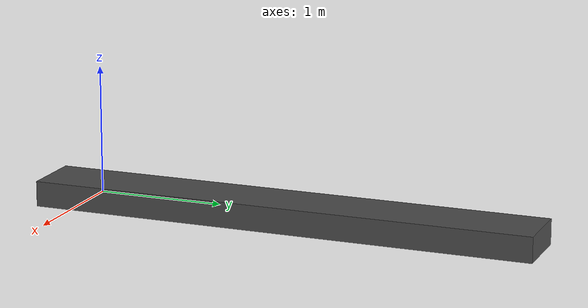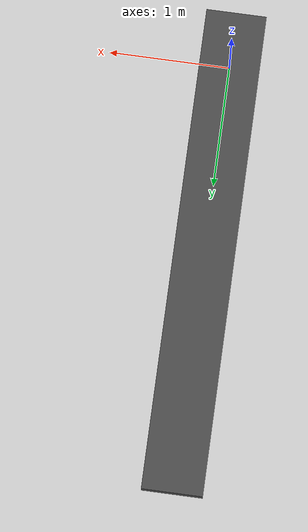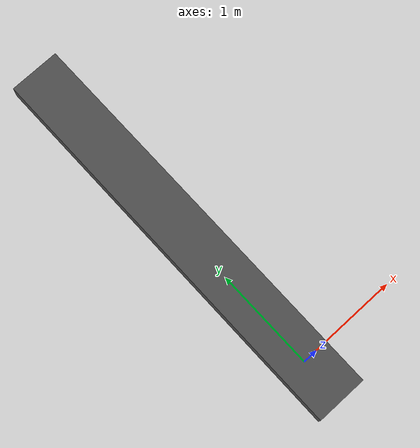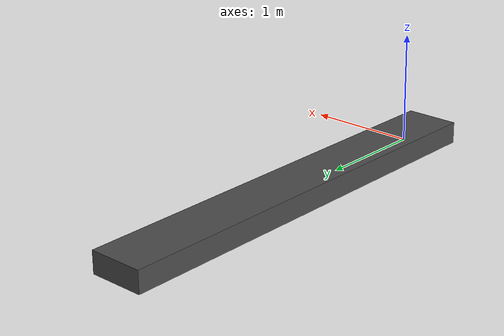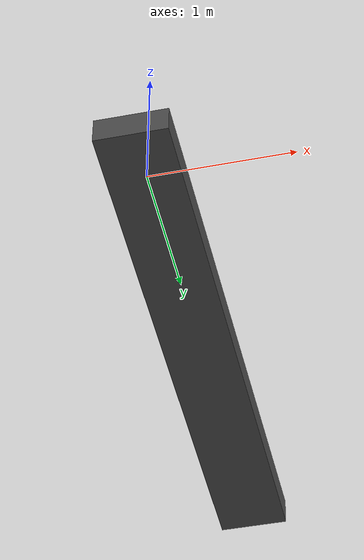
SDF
<?xml version="1.0" ?>
<sdf version="1.6">
  <model name="conveyor_belt_out">

    <model name="conveyor_belt_out_fixed">
      <static>true</static>
      <!-- Hard Coded to match the ends of the fixed && moving segments -->
      <pose>0 -0.45 0 0 0 -1.57079</pose>
      <link name="belt">
        <pose>-2 0 0 0 0 0</pose>
        <visual name="belt_visual">

          <geometry>
            <box>
              <size>4.00 0.50 0.20</size>
            </box>
          </geometry>

          <material>
            <script>
              <uri>file://media/materials/scripts/gazebo.material</uri>
              <name>Gazebo/DarkGrey</name>
            </script>
          </material>

        </visual>
      </link>
    </model>

    <model name="conveyor_belt_out_moving">
      <static>false</static>
      <pose>0 0 0 0 0 -1.57079</pose>
      <link name="belt">
        <pose>-1.95 0 0 0 0 0</pose>

        <!--Uncomment for debugging -->

        <collision name="belt_collision">
          <geometry>
            <box>
              <size>4.00 0.50 0.20</size>
            </box>
          </geometry>
        </collision>
      </link>
    </model>

    <joint name="belt_joint" type="prismatic">
      <parent>conveyor_belt_out_fixed::belt</parent>
      <child>conveyor_belt_out_moving::belt</child>
      <axis>
        <xyz>1 0 0</xyz>
        <limit>
          <lower>0.00</lower>
          <upper>1.00</upper>
        </limit>
      </axis>
    </joint>

    <plugin name="conveyor_belt_plugin" filename="libROSConveyorBeltPlugin.so">
      <robot_namespace>/ur5_t2_4230</robot_namespace>
      <topic>conveyor/control/out</topic>
      <link>conveyor_belt_out::conveyor_belt_out_moving::belt</link>
      <power>100.0</power>
    </plugin>

  </model>
</sdf>
